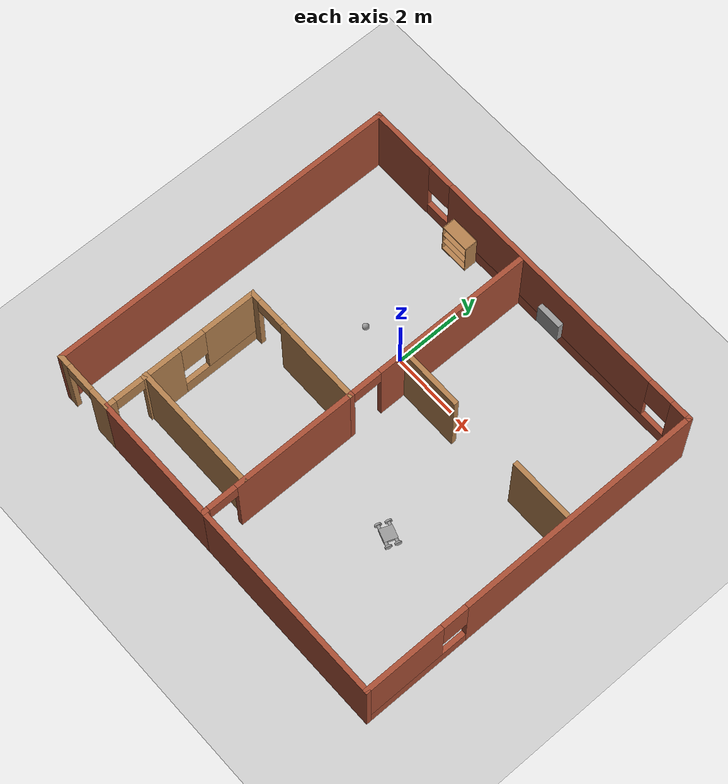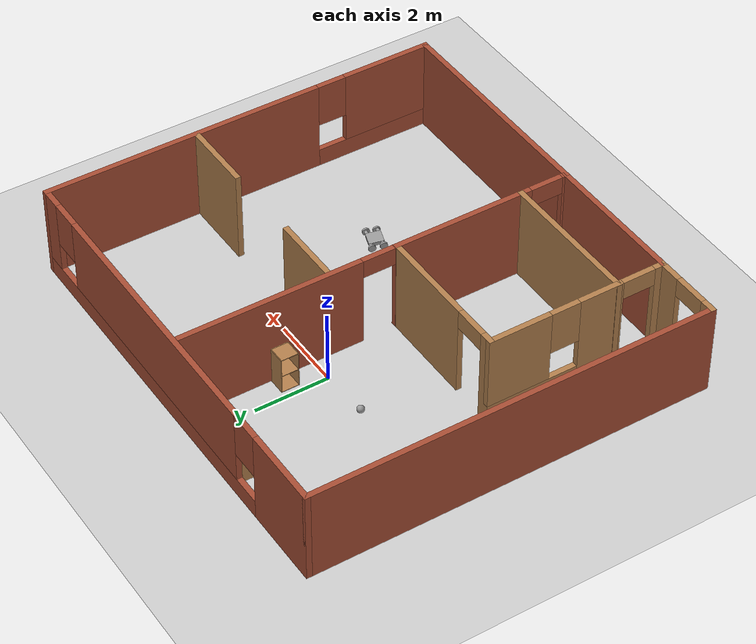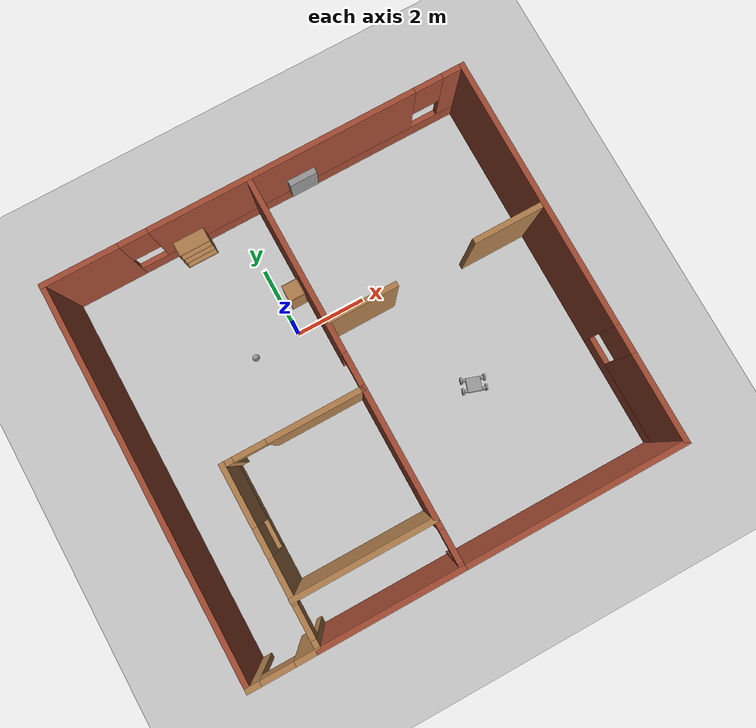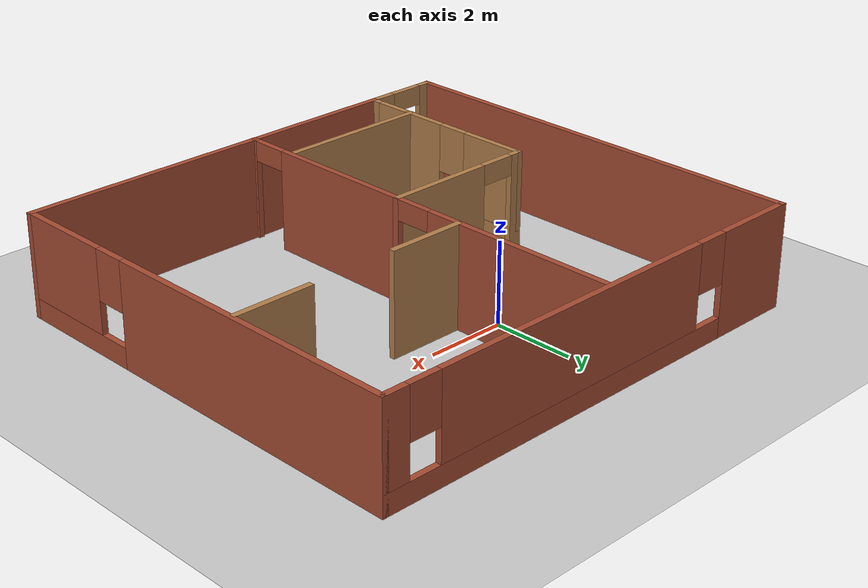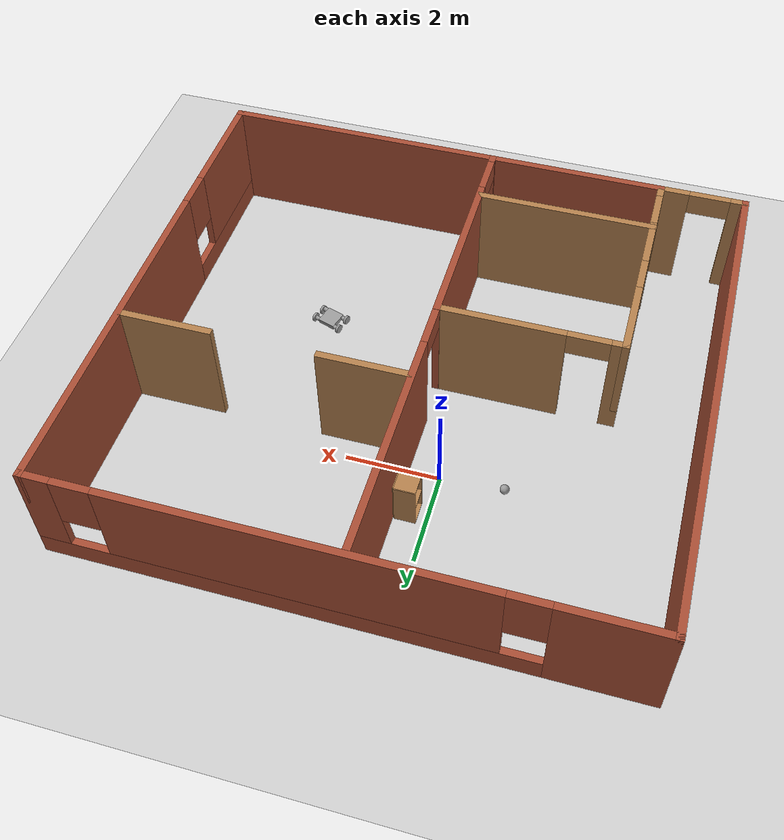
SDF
<sdf version="1.6">
 <world name="default">
  <plugin name="hello" filename="libmyPlugin.so"/>
  <light name="sun" type="directional">
   <pose>0 0 10 0 -0 0</pose>
   <diffuse>0.8 0.8 0.8 1</diffuse>
   <specular>0.2 0.2 0.2 1</specular>
   <attenuation>
    <range>1000</range>
    <constant>0.9</constant>
    <linear>0.01</linear>
    <quadratic>0.001</quadratic>
   </attenuation>
   <direction>-0.5 0.1 -0.9</direction>
  </light>
  <model name="ground_plane">
   <static>1</static>
   <link name="link">
    <collision name="collision">
     <geometry><plane><normal>0 0 1</normal><size>100 100</size></plane></geometry>
     <surface><friction><ode><mu>100</mu><mu2>50</mu2></ode></friction></surface>
    </collision>
    <visual name="visual">
     <cast_shadows>0</cast_shadows>
     <geometry><plane><normal>0 0 1</normal><size>100 100</size></plane></geometry>
     <material>
      <script><uri>file://media/materials/scripts/gazebo.material</uri><name>Gazebo/Grey</name></script>
     </material>
    </visual>
   </link>
  </model>
  <gravity>0 0 -9.8</gravity>
  <magnetic_field>6e-06 2.3e-05 -4.2e-05</magnetic_field>
  <atmosphere type="adiabatic"/>
  <physics name="default_physics" default="0" type="ode">
   <max_step_size>0.001</max_step_size>
   <real_time_factor>1</real_time_factor>
   <real_time_update_rate>1000</real_time_update_rate>
  </physics>
  <scene><ambient>0.4 0.4 0.4 1</ambient><background>0.7 0.7 0.7 1</background><shadows>1</shadows></scene>
  <spherical_coordinates>
   <surface_model>EARTH_WGS84</surface_model>
   <latitude_deg>0</latitude_deg>
   <longitude_deg>0</longitude_deg>
   <elevation>0</elevation>
   <heading_deg>0</heading_deg>
  </spherical_coordinates>
  <model name="Building">
   <pose>0.95778 -1.80787 0 0 -0 0</pose>
   <link name="Wall_13">
    <pose>-5 -5.425 0 0 -0 0</pose>
    <visual name="Wall_13_Visual_0">
     <pose>-0.801873 0 1.25 0 -0 0</pose>
     <geometry><box><size>0.396253 0.15 2.5</size></box></geometry>
     <material>
      <script><uri>file://media/materials/scripts/gazebo.material</uri><name>Gazebo/Wood</name></script>
      <ambient>0 0.333333 0 1</ambient>
     </material>
     <meta><layer>0</layer></meta>
    </visual>
    <collision name="Wall_13_Collision_0">
     <geometry><box><size>0.396253 0.15 2.5</size></box></geometry>
     <pose>-0.801873 0 1.25 0 -0 0</pose>
    </collision>
    <visual name="Wall_13_Visual_1">
     <pose>0.648127 0 1.25 0 -0 0</pose>
     <geometry><box><size>0.703747 0.15 2.5</size></box></geometry>
     <material>
      <script><uri>file://media/materials/scripts/gazebo.material</uri><name>Gazebo/Wood</name></script>
      <ambient>0 0.333333 0 1</ambient>
     </material>
     <meta><layer>0</layer></meta>
    </visual>
    <collision name="Wall_13_Collision_1">
     <geometry><box><size>0.703747 0.15 2.5</size></box></geometry>
     <pose>0.648127 0 1.25 0 -0 0</pose>
    </collision>
    <visual name="Wall_13_Visual_2">
     <pose>-0.153747 0 2.25 0 -0 0</pose>
     <geometry><box><size>0.9 0.15 0.5</size></box></geometry>
     <material>
      <script><uri>file://media/materials/scripts/gazebo.material</uri><name>Gazebo/Wood</name></script>
      <ambient>0 0.333333 0 1</ambient>
     </material>
     <meta><layer>0</layer></meta>
    </visual>
    <collision name="Wall_13_Collision_2">
     <geometry><box><size>0.9 0.15 0.5</size></box></geometry>
     <pose>-0.153747 0 2.25 0 -0 0</pose>
    </collision>
   </link>
   <link name="Wall_14">
    <pose>-4.075 -3 0 0 -0 1.5708</pose>
    <visual name="Wall_14_Visual_0">
     <pose>-2.32953 0 1.25 0 -0 0</pose>
     <geometry><box><size>0.340933 0.15 2.5</size></box></geometry>
     <material>
      <script><uri>file://media/materials/scripts/gazebo.material</uri><name>Gazebo/Wood</name></script>
      <ambient>0 0.333333 0 1</ambient>
     </material>
     <meta><layer>0</layer></meta>
    </visual>
    <collision name="Wall_14_Collision_0">
     <geometry><box><size>0.340933 0.15 2.5</size></box></geometry>
     <pose>-2.32953 0 1.25 0 -0 0</pose>
    </collision>
    <visual name="Wall_14_Visual_1">
     <pose>-0.648218 0 1.25 0 -0 0</pose>
     <geometry><box><size>1.2217 0.15 2.5</size></box></geometry>
     <material>
      <script><uri>file://media/materials/scripts/gazebo.material</uri><name>Gazebo/Wood</name></script>
      <ambient>0 0.333333 0 1</ambient>
     </material>
     <meta><layer>0</layer></meta>
    </visual>
    <collision name="Wall_14_Collision_1">
     <geometry><box><size>1.2217 0.15 2.5</size></box></geometry>
     <pose>-0.648218 0 1.25 0 -0 0</pose>
    </collision>
    <visual name="Wall_14_Visual_2">
     <pose>1.23131 0 0.25 0 -0 0</pose>
     <geometry><box><size>2.53737 0.15 0.5</size></box></geometry>
     <material>
      <script><uri>file://media/materials/scripts/gazebo.material</uri><name>Gazebo/Wood</name></script>
      <ambient>0 0.333333 0 1</ambient>
     </material>
     <meta><layer>0</layer></meta>
    </visual>
    <collision name="Wall_14_Collision_2">
     <geometry><box><size>2.53737 0.15 0.5</size></box></geometry>
     <pose>1.23131 0 0.25 0 -0 0</pose>
    </collision>
    <visual name="Wall_14_Visual_3">
     <pose>1.63132 0 1.5 0 -0 0</pose>
     <geometry><box><size>1.73737 0.15 2</size></box></geometry>
     <material>
      <script><uri>file://media/materials/scripts/gazebo.material</uri><name>Gazebo/Wood</name></script>
      <ambient>0 0.333333 0 1</ambient>
     </material>
     <meta><layer>0</layer></meta>
    </visual>
    <collision name="Wall_14_Collision_3">
     <geometry><box><size>1.73737 0.15 2</size></box></geometry>
     <pose>1.63132 0 1.5 0 -0 0</pose>
    </collision>
    <visual name="Wall_14_Visual_4">
     <pose>0.362631 0 1.9 0 -0 0</pose>
     <geometry><box><size>0.8 0.15 1.2</size></box></geometry>
     <material>
      <script><uri>file://media/materials/scripts/gazebo.material</uri><name>Gazebo/Wood</name></script>
      <ambient>0 0.333333 0 1</ambient>
     </material>
     <meta><layer>0</layer></meta>
    </visual>
    <collision name="Wall_14_Collision_4">
     <geometry><box><size>0.8 0.15 1.2</size></box></geometry>
     <pose>0.362631 0 1.9 0 -0 0</pose>
    </collision>
    <visual name="Wall_14_Visual_5">
     <pose>-1.70907 0 2.25 0 -0 0</pose>
     <geometry><box><size>0.9 0.15 0.5</size></box></geometry>
     <material>
      <script><uri>file://media/materials/scripts/gazebo.material</uri><name>Gazebo/Wood</name></script>
      <ambient>0 0.333333 0 1</ambient>
     </material>
     <meta><layer>0</layer></meta>
    </visual>
    <collision name="Wall_14_Collision_5">
     <geometry><box><size>0.9 0.15 0.5</size></box></geometry>
     <pose>-1.70907 0 2.25 0 -0 0</pose>
    </collision>
   </link>
   <link name="Wall_15">
    <pose>-2.15 -0.575 0 0 -0 0</pose>
    <visual name="Wall_15_Visual_0">
     <pose>-1.82178 0 1.25 0 -0 0</pose>
     <geometry><box><size>0.356442 0.15 2.5</size></box></geometry>
     <material>
      <script><uri>file://media/materials/scripts/gazebo.material</uri><name>Gazebo/Wood</name></script>
      <ambient>1 1 1 1</ambient>
     </material>
     <meta><layer>0</layer></meta>
    </visual>
    <collision name="Wall_15_Collision_0">
     <geometry><box><size>0.356442 0.15 2.5</size></box></geometry>
     <pose>-1.82178 0 1.25 0 -0 0</pose>
    </collision>
    <visual name="Wall_15_Visual_1">
     <pose>0.628221 0 1.25 0 -0 0</pose>
     <geometry><box><size>2.74356 0.15 2.5</size></box></geometry>
     <material>
      <script><uri>file://media/materials/scripts/gazebo.material</uri><name>Gazebo/Wood</name></script>
      <ambient>1 1 1 1</ambient>
     </material>
     <meta><layer>0</layer></meta>
    </visual>
    <collision name="Wall_15_Collision_1">
     <geometry><box><size>2.74356 0.15 2.5</size></box></geometry>
     <pose>0.628221 0 1.25 0 -0 0</pose>
    </collision>
    <visual name="Wall_15_Visual_2">
     <pose>-1.19356 0 2.25 0 -0 0</pose>
     <geometry><box><size>0.9 0.15 0.5</size></box></geometry>
     <material>
      <script><uri>file://media/materials/scripts/gazebo.material</uri><name>Gazebo/Wood</name></script>
      <ambient>1 1 1 1</ambient>
     </material>
     <meta><layer>0</layer></meta>
    </visual>
    <collision name="Wall_15_Collision_2">
     <geometry><box><size>0.9 0.15 0.5</size></box></geometry>
     <pose>-1.19356 0 2.25 0 -0 0</pose>
    </collision>
   </link>
   <link name="Wall_16">
    <pose>-0.225 -3 0 0 0 -1.5708</pose>
    <visual name="Wall_16_Visual_0">
     <pose>-0.557233 0 1.25 0 -0 0</pose>
     <geometry><box><size>3.88553 0.15 2.5</size></box></geometry>
     <material>
      <script><uri>file://media/materials/scripts/gazebo.material</uri><name>Gazebo/Bricks</name></script>
      <ambient>1 0 0.498039 1</ambient>
     </material>
     <meta><layer>0</layer></meta>
    </visual>
    <collision name="Wall_16_Collision_0">
     <geometry><box><size>3.88553 0.15 2.5</size></box></geometry>
     <pose>-0.557233 0 1.25 0 -0 0</pose>
    </collision>
    <visual name="Wall_16_Visual_1">
     <pose>2.39277 0 1.25 0 -0 0</pose>
     <geometry><box><size>0.214466 0.15 2.5</size></box></geometry>
     <material>
      <script><uri>file://media/materials/scripts/gazebo.material</uri><name>Gazebo/Bricks</name></script>
      <ambient>1 0 0.498039 1</ambient>
     </material>
     <meta><layer>0</layer></meta>
    </visual>
    <collision name="Wall_16_Collision_1">
     <geometry><box><size>0.214466 0.15 2.5</size></box></geometry>
     <pose>2.39277 0 1.25 0 -0 0</pose>
    </collision>
    <visual name="Wall_16_Visual_2">
     <pose>1.83553 0 2.25 0 -0 0</pose>
     <geometry><box><size>0.9 0.15 0.5</size></box></geometry>
     <material>
      <script><uri>file://media/materials/scripts/gazebo.material</uri><name>Gazebo/Bricks</name></script>
      <ambient>1 0 0.498039 1</ambient>
     </material>
     <meta><layer>0</layer></meta>
    </visual>
    <collision name="Wall_16_Collision_2">
     <geometry><box><size>0.9 0.15 0.5</size></box></geometry>
     <pose>1.83553 0 2.25 0 -0 0</pose>
    </collision>
   </link>
   <link name="Wall_17">
    <collision name="Wall_17_Collision">
     <geometry><box><size>4 0.15 2.5</size></box></geometry>
     <pose>0 0 1.25 0 -0 0</pose>
    </collision>
    <visual name="Wall_17_Visual">
     <pose>0 0 1.25 0 -0 0</pose>
     <geometry><box><size>4 0.15 2.5</size></box></geometry>
     <material>
      <script><uri>file://media/materials/scripts/gazebo.material</uri><name>Gazebo/Bricks</name></script>
      <ambient>0.333333 0.666667 1 1</ambient>
     </material>
     <meta><layer>0</layer></meta>
    </visual>
    <pose>-2.15 -5.425 0 0 -0 3.14159</pose>
   </link>
   <link name="Wall_19">
    <pose>5.925 0 0 0 0 -1.5708</pose>
    <visual name="Wall_19_Visual_0">
     <pose>-1.66274 0 1.25 0 -0 0</pose>
     <geometry><box><size>7.67452 0.15 2.5</size></box></geometry>
     <material>
      <script><uri>file://media/materials/scripts/gazebo.material</uri><name>Gazebo/Bricks</name></script>
      <ambient>0.333333 0.666667 1 1</ambient>
     </material>
     <meta><layer>0</layer></meta>
    </visual>
    <collision name="Wall_19_Collision_0">
     <geometry><box><size>7.67452 0.15 2.5</size></box></geometry>
     <pose>-1.66274 0 1.25 0 -0 0</pose>
    </collision>
    <visual name="Wall_19_Visual_1">
     <pose>3.83726 0 0.25 0 -0 0</pose>
     <geometry><box><size>3.32548 0.15 0.5</size></box></geometry>
     <material>
      <script><uri>file://media/materials/scripts/gazebo.material</uri><name>Gazebo/Bricks</name></script>
      <ambient>0.333333 0.666667 1 1</ambient>
     </material>
     <meta><layer>0</layer></meta>
    </visual>
    <collision name="Wall_19_Collision_1">
     <geometry><box><size>3.32548 0.15 0.5</size></box></geometry>
     <pose>3.83726 0 0.25 0 -0 0</pose>
    </collision>
    <visual name="Wall_19_Visual_2">
     <pose>4.23726 0 1.5 0 -0 0</pose>
     <geometry><box><size>2.52548 0.15 2</size></box></geometry>
     <material>
      <script><uri>file://media/materials/scripts/gazebo.material</uri><name>Gazebo/Bricks</name></script>
      <ambient>0.333333 0.666667 1 1</ambient>
     </material>
     <meta><layer>0</layer></meta>
    </visual>
    <collision name="Wall_19_Collision_2">
     <geometry><box><size>2.52548 0.15 2</size></box></geometry>
     <pose>4.23726 0 1.5 0 -0 0</pose>
    </collision>
    <visual name="Wall_19_Visual_3">
     <pose>2.57452 0 1.9 0 -0 0</pose>
     <geometry><box><size>0.8 0.15 1.2</size></box></geometry>
     <material>
      <script><uri>file://media/materials/scripts/gazebo.material</uri><name>Gazebo/Bricks</name></script>
      <ambient>0.333333 0.666667 1 1</ambient>
     </material>
     <meta><layer>0</layer></meta>
    </visual>
    <collision name="Wall_19_Collision_3">
     <geometry><box><size>0.8 0.15 1.2</size></box></geometry>
     <pose>2.57452 0 1.9 0 -0 0</pose>
    </collision>
   </link>
   <link name="Wall_20">
    <collision name="Wall_20_Collision">
     <geometry><box><size>6.3 0.15 2.5</size></box></geometry>
     <pose>0 0 1.25 0 -0 0</pose>
    </collision>
    <visual name="Wall_20_Visual">
     <pose>0 0 1.25 0 -0 0</pose>
     <geometry><box><size>6.3 0.15 2.5</size></box></geometry>
     <material>
      <script><uri>file://media/materials/scripts/gazebo.material</uri><name>Gazebo/Bricks</name></script>
      <ambient>0.333333 0.666667 1 1</ambient>
     </material>
     <meta><layer>0</layer></meta>
    </visual>
    <pose>2.85 -5.425 0 0 -0 3.14159</pose>
   </link>
   <link name="Wall_22">
    <pose>-0.225 2.35 0 0 -0 1.5708</pose>
    <visual name="Wall_22_Visual_0">
     <pose>-2.92136 0 1.25 0 -0 0</pose>
     <geometry><box><size>0.157281 0.15 2.5</size></box></geometry>
     <material>
      <script><uri>file://media/materials/scripts/gazebo.material</uri><name>Gazebo/Bricks</name></script>
      <ambient>1 0 0.498039 1</ambient>
     </material>
     <meta><layer>0</layer></meta>
    </visual>
    <collision name="Wall_22_Collision_0">
     <geometry><box><size>0.157281 0.15 2.5</size></box></geometry>
     <pose>-2.92136 0 1.25 0 -0 0</pose>
    </collision>
    <visual name="Wall_22_Visual_1">
     <pose>0.528641 0 1.25 0 -0 0</pose>
     <geometry><box><size>4.94272 0.15 2.5</size></box></geometry>
     <material>
      <script><uri>file://media/materials/scripts/gazebo.material</uri><name>Gazebo/Bricks</name></script>
      <ambient>1 0 0.498039 1</ambient>
     </material>
     <meta><layer>0</layer></meta>
    </visual>
    <collision name="Wall_22_Collision_1">
     <geometry><box><size>4.94272 0.15 2.5</size></box></geometry>
     <pose>0.528641 0 1.25 0 -0 0</pose>
    </collision>
    <visual name="Wall_22_Visual_2">
     <pose>-2.39272 0 2.25 0 -0 0</pose>
     <geometry><box><size>0.9 0.15 0.5</size></box></geometry>
     <material>
      <script><uri>file://media/materials/scripts/gazebo.material</uri><name>Gazebo/Bricks</name></script>
      <ambient>1 0 0.498039 1</ambient>
     </material>
     <meta><layer>0</layer></meta>
    </visual>
    <collision name="Wall_22_Collision_2">
     <geometry><box><size>0.9 0.15 0.5</size></box></geometry>
     <pose>-2.39272 0 2.25 0 -0 0</pose>
    </collision>
   </link>
   <link name="Wall_3">
    <pose>0 5.425 0 0 -0 0</pose>
    <visual name="Wall_3_Visual_0">
     <pose>-4.91889 0 1.25 0 -0 0</pose>
     <geometry><box><size>2.16222 0.15 2.5</size></box></geometry>
     <material>
      <script><uri>file://media/materials/scripts/gazebo.material</uri><name>Gazebo/Bricks</name></script>
      <ambient>0.333333 0.666667 1 1</ambient>
     </material>
     <meta><layer>0</layer></meta>
    </visual>
    <collision name="Wall_3_Collision_0">
     <geometry><box><size>2.16222 0.15 2.5</size></box></geometry>
     <pose>-4.91889 0 1.25 0 -0 0</pose>
    </collision>
    <visual name="Wall_3_Visual_1">
     <pose>1.08111 0 0.25 0 -0 0</pose>
     <geometry><box><size>9.83778 0.15 0.5</size></box></geometry>
     <material>
      <script><uri>file://media/materials/scripts/gazebo.material</uri><name>Gazebo/Bricks</name></script>
      <ambient>0.333333 0.666667 1 1</ambient>
     </material>
     <meta><layer>0</layer></meta>
    </visual>
    <collision name="Wall_3_Collision_1">
     <geometry><box><size>9.83778 0.15 0.5</size></box></geometry>
     <pose>1.08111 0 0.25 0 -0 0</pose>
    </collision>
    <visual name="Wall_3_Visual_2">
     <pose>0.745897 0 1.5 0 -0 0</pose>
     <geometry><box><size>7.56736 0.15 2</size></box></geometry>
     <material>
      <script><uri>file://media/materials/scripts/gazebo.material</uri><name>Gazebo/Bricks</name></script>
      <ambient>0.333333 0.666667 1 1</ambient>
     </material>
     <meta><layer>0</layer></meta>
    </visual>
    <collision name="Wall_3_Collision_2">
     <geometry><box><size>7.56736 0.15 2</size></box></geometry>
     <pose>0.745897 0 1.5 0 -0 0</pose>
    </collision>
    <visual name="Wall_3_Visual_3">
     <pose>5.66479 0 1.5 0 -0 0</pose>
     <geometry><box><size>0.670423 0.15 2</size></box></geometry>
     <material>
      <script><uri>file://media/materials/scripts/gazebo.material</uri><name>Gazebo/Bricks</name></script>
      <ambient>0.333333 0.666667 1 1</ambient>
     </material>
     <meta><layer>0</layer></meta>
    </visual>
    <collision name="Wall_3_Collision_3">
     <geometry><box><size>0.670423 0.15 2</size></box></geometry>
     <pose>5.66479 0 1.5 0 -0 0</pose>
    </collision>
    <visual name="Wall_3_Visual_4">
     <pose>-3.43778 0 1.9 0 -0 0</pose>
     <geometry><box><size>0.8 0.15 1.2</size></box></geometry>
     <material>
      <script><uri>file://media/materials/scripts/gazebo.material</uri><name>Gazebo/Bricks</name></script>
      <ambient>0.333333 0.666667 1 1</ambient>
     </material>
     <meta><layer>0</layer></meta>
    </visual>
    <collision name="Wall_3_Collision_4">
     <geometry><box><size>0.8 0.15 1.2</size></box></geometry>
     <pose>-3.43778 0 1.9 0 -0 0</pose>
    </collision>
    <visual name="Wall_3_Visual_5">
     <pose>4.92958 0 1.9 0 -0 0</pose>
     <geometry><box><size>0.8 0.15 1.2</size></box></geometry>
     <material>
      <script><uri>file://media/materials/scripts/gazebo.material</uri><name>Gazebo/Bricks</name></script>
      <ambient>0.333333 0.666667 1 1</ambient>
     </material>
     <meta><layer>0</layer></meta>
    </visual>
    <collision name="Wall_3_Collision_5">
     <geometry><box><size>0.8 0.15 1.2</size></box></geometry>
     <pose>4.92958 0 1.9 0 -0 0</pose>
    </collision>
   </link>
   <link name="Wall_33">
    <collision name="Wall_33_Collision">
     <geometry><box><size>4 0.15 2.5</size></box></geometry>
     <pose>0 0 1.25 0 -0 0</pose>
    </collision>
    <visual name="Wall_33_Visual">
     <pose>0 0 1.25 0 -0 0</pose>
     <geometry><box><size>4 0.15 2.5</size></box></geometry>
     <material>
      <script><uri>file://media/materials/scripts/gazebo.material</uri><name>Gazebo/Wood</name></script>
      <ambient>0 0.333333 0 1</ambient>
     </material>
     <meta><layer>0</layer></meta>
    </visual>
    <pose>-2.16276 -4.12577 0 0 -0 0</pose>
   </link>
   <link name="Wall_35">
    <collision name="Wall_35_Collision">
     <geometry><box><size>2 0.15 2.5</size></box></geometry>
     <pose>0 0 1.25 0 -0 0</pose>
    </collision>
    <visual name="Wall_35_Visual">
     <pose>0 0 1.25 0 -0 0</pose>
     <geometry><box><size>2 0.15 2.5</size></box></geometry>
     <material>
      <script><uri>file://media/materials/scripts/gazebo.material</uri><name>Gazebo/Wood</name></script>
      <ambient>1 1 1 1</ambient>
     </material>
     <meta><layer>0</layer></meta>
    </visual>
    <pose>0.739273 1.28478 0 0 -0 0</pose>
   </link>
   <link name="Wall_37">
    <collision name="Wall_37_Collision">
     <geometry><box><size>2 0.15 2.5</size></box></geometry>
     <pose>0 0 1.25 0 -0 0</pose>
    </collision>
    <visual name="Wall_37_Visual">
     <pose>0 0 1.25 0 -0 0</pose>
     <geometry><box><size>2 0.15 2.5</size></box></geometry>
     <material>
      <script><uri>file://media/materials/scripts/gazebo.material</uri><name>Gazebo/Wood</name></script>
      <ambient>1 1 1 1</ambient>
     </material>
     <meta><layer>0</layer></meta>
    </visual>
    <pose>4.90323 1.30489 0 0 -0 3.14159</pose>
   </link>
   <link name="Wall_6">
    <collision name="Wall_6_Collision">
     <geometry><box><size>11 0.15 2.5</size></box></geometry>
     <pose>0 0 1.25 0 -0 0</pose>
    </collision>
    <visual name="Wall_6_Visual">
     <pose>0 0 1.25 0 -0 0</pose>
     <geometry><box><size>11 0.15 2.5</size></box></geometry>
     <material>
      <script><uri>file://media/materials/scripts/gazebo.material</uri><name>Gazebo/Bricks</name></script>
      <ambient>0.333333 0.666667 1 1</ambient>
     </material>
     <meta><layer>0</layer></meta>
    </visual>
    <pose>-5.925 0 0 0 0 -1.5708</pose>
   </link>
   <link name="Window_3">
    <collision name="Window_3_Collision">
     <geometry><box><size>0.8 0.17 0.8</size></box></geometry>
     <pose>0 0 0.4 0 -0 0</pose>
    </collision>
    <visual name="Window_3_Visual">
     <pose>0 0 0.4 0 -0 0</pose>
     <geometry><box><size>0.8 0.17 0.8</size></box></geometry>
     <material>
      <script><uri>file://media/materials/scripts/gazebo.material</uri><name>Gazebo/Grey</name></script>
     </material>
    </visual>
    <pose>1.11085 5.245 0.5 0 -0 0</pose>
   </link>
   <static>1</static>
  </model>
  <model name="MyRobot">
   <link name="link_0">
    <pose>2e-06 -0.002778 0.002777 0 -0 0</pose>
    <inertial>
     <mass>1</mass>
     <inertia>
      <ixx>0.166667</ixx>
      <ixy>0</ixy>
      <ixz>0</ixz>
      <iyy>0.166667</iyy>
      <iyz>0</iyz>
      <izz>0.166667</izz>
     </inertia>
    </inertial>
    <visual name="visual">
     <geometry><box><size>0.4 0.4 0.1</size></box></geometry>
     <material>
      <lighting>1</lighting>
      <script><uri>file://media/materials/scripts/gazebo.material</uri><name>Gazebo/Grey</name></script>
      <ambient>0.3 0.3 0.3 1</ambient>
      <diffuse>0.7 0.7 0.7 1</diffuse>
      <specular>0.01 0.01 0.01 1</specular>
      <emissive>0 0 0 1</emissive>
      <shader type="vertex"><normal_map>__default__</normal_map></shader>
     </material>
    </visual>
    <collision name="collision">
     <geometry><box><size>0.4 0.4 0.1</size></box></geometry>
     <surface>
      <friction>
       <ode><mu>1</mu><mu2>1</mu2><fdir1>0 0 0</fdir1><slip1>0</slip1><slip2>0</slip2></ode>
       <torsional>
        <coefficient>1</coefficient>
        <patch_radius>0</patch_radius>
        <surface_radius>0</surface_radius>
        <use_patch_radius>1</use_patch_radius>
        <ode><slip>0</slip></ode>
       </torsional>
      </friction>
      <bounce><restitution_coefficient>0</restitution_coefficient><threshold>1e+06</threshold></bounce>
      <contact>
       <collide_without_contact>0</collide_without_contact>
       <collide_without_contact_bitmask>1</collide_without_contact_bitmask>
       <collide_bitmask>1</collide_bitmask>
       <ode>
        <soft_cfm>0</soft_cfm>
        <soft_erp>0.2</soft_erp>
        <kp>1e+13</kp>
        <kd>1</kd>
        <max_vel>0.01</max_vel>
        <min_depth>0</min_depth>
       </ode>
       <bullet>
        <split_impulse>1</split_impulse>
        <split_impulse_penetration_threshold>-0.01</split_impulse_penetration_threshold>
        <soft_cfm>0</soft_cfm>
        <soft_erp>0.2</soft_erp>
        <kp>1e+13</kp>
        <kd>1</kd>
       </bullet>
      </contact>
     </surface>
    </collision>
   </link>
   <link name="link_1">
    <pose>0.250012 -0.152778 0.002777 0 1.5707 5e-05</pose>
    <inertial>
     <mass>1</mass>
     <inertia><ixx>0.145833</ixx><ixy>0</ixy><ixz>0</ixz><iyy>0.145833</iyy><iyz>0</iyz><izz>0.125</izz></inertia>
    </inertial>
    <visual name="visual">
     <geometry><cylinder><radius>0.05</radius><length>0.1</length></cylinder></geometry>
     <material>
      <lighting>1</lighting>
      <script><uri>file://media/materials/scripts/gazebo.material</uri><name>Gazebo/Grey</name></script>
      <ambient>0.3 0.3 0.3 1</ambient>
      <diffuse>0.7 0.7 0.7 1</diffuse>
      <specular>0.01 0.01 0.01 1</specular>
      <emissive>0 0 0 1</emissive>
      <shader type="vertex"><normal_map>__default__</normal_map></shader>
     </material>
    </visual>
    <collision name="collision">
     <geometry><cylinder><radius>0.05</radius><length>0.1</length></cylinder></geometry>
     <surface>
      <friction>
       <ode><mu>1</mu><mu2>1</mu2><fdir1>0 0 0</fdir1><slip1>0</slip1><slip2>0</slip2></ode>
       <torsional>
        <coefficient>1</coefficient>
        <patch_radius>0</patch_radius>
        <surface_radius>0</surface_radius>
        <use_patch_radius>1</use_patch_radius>
        <ode><slip>0</slip></ode>
       </torsional>
      </friction>
      <bounce><restitution_coefficient>0</restitution_coefficient><threshold>1e+06</threshold></bounce>
      <contact>
       <collide_without_contact>0</collide_without_contact>
       <collide_without_contact_bitmask>1</collide_without_contact_bitmask>
       <collide_bitmask>1</collide_bitmask>
       <ode>
        <soft_cfm>0</soft_cfm>
        <soft_erp>0.2</soft_erp>
        <kp>1e+13</kp>
        <kd>1</kd>
        <max_vel>0.01</max_vel>
        <min_depth>0</min_depth>
       </ode>
       <bullet>
        <split_impulse>1</split_impulse>
        <split_impulse_penetration_threshold>-0.01</split_impulse_penetration_threshold>
        <soft_cfm>0</soft_cfm>
        <soft_erp>0.2</soft_erp>
        <kp>1e+13</kp>
        <kd>1</kd>
       </bullet>
      </contact>
     </surface>
    </collision>
   </link>
   <link name="link_1_clone">
    <pose>0.250009 0.147219 0.002777 0 1.5707 5e-05</pose>
    <inertial>
     <mass>1</mass>
     <inertia><ixx>0.145833</ixx><ixy>0</ixy><ixz>0</ixz><iyy>0.145833</iyy><iyz>0</iyz><izz>0.125</izz></inertia>
    </inertial>
    <visual name="visual">
     <geometry><cylinder><radius>0.05</radius><length>0.1</length></cylinder></geometry>
     <material>
      <lighting>1</lighting>
      <script><uri>file://media/materials/scripts/gazebo.material</uri><name>Gazebo/Grey</name></script>
      <ambient>0.3 0.3 0.3 1</ambient>
      <diffuse>0.7 0.7 0.7 1</diffuse>
      <specular>0.01 0.01 0.01 1</specular>
      <emissive>0 0 0 1</emissive>
      <shader type="vertex"><normal_map>__default__</normal_map></shader>
     </material>
    </visual>
    <collision name="collision">
     <geometry><cylinder><radius>0.05</radius><length>0.1</length></cylinder></geometry>
     <surface>
      <friction>
       <ode><mu>1</mu><mu2>1</mu2><fdir1>0 0 0</fdir1><slip1>0</slip1><slip2>0</slip2></ode>
       <torsional>
        <coefficient>1</coefficient>
        <patch_radius>0</patch_radius>
        <surface_radius>0</surface_radius>
        <use_patch_radius>1</use_patch_radius>
        <ode><slip>0</slip></ode>
       </torsional>
      </friction>
      <bounce><restitution_coefficient>0</restitution_coefficient><threshold>1e+06</threshold></bounce>
      <contact>
       <collide_without_contact>0</collide_without_contact>
       <collide_without_contact_bitmask>1</collide_without_contact_bitmask>
       <collide_bitmask>1</collide_bitmask>
       <ode>
        <soft_cfm>0</soft_cfm>
        <soft_erp>0.2</soft_erp>
        <kp>1e+13</kp>
        <kd>1</kd>
        <max_vel>0.01</max_vel>
        <min_depth>0</min_depth>
       </ode>
       <bullet>
        <split_impulse>1</split_impulse>
        <split_impulse_penetration_threshold>-0.01</split_impulse_penetration_threshold>
        <soft_cfm>0</soft_cfm>
        <soft_erp>0.2</soft_erp>
        <kp>1e+13</kp>
        <kd>1</kd>
       </bullet>
      </contact>
     </surface>
    </collision>
   </link>
   <link name="link_1_clone_0">
    <pose>-0.250005 0.147219 0.002777 0 1.5707 5e-05</pose>
    <inertial>
     <mass>1</mass>
     <inertia><ixx>0.145833</ixx><ixy>0</ixy><ixz>0</ixz><iyy>0.145833</iyy><iyz>0</iyz><izz>0.125</izz></inertia>
    </inertial>
    <visual name="visual">
     <geometry><cylinder><radius>0.05</radius><length>0.1</length></cylinder></geometry>
     <material>
      <lighting>1</lighting>
      <script><uri>file://media/materials/scripts/gazebo.material</uri><name>Gazebo/Grey</name></script>
      <ambient>0.3 0.3 0.3 1</ambient>
      <diffuse>0.7 0.7 0.7 1</diffuse>
      <specular>0.01 0.01 0.01 1</specular>
      <emissive>0 0 0 1</emissive>
      <shader type="vertex"><normal_map>__default__</normal_map></shader>
     </material>
    </visual>
    <collision name="collision">
     <geometry><cylinder><radius>0.05</radius><length>0.1</length></cylinder></geometry>
     <surface>
      <friction>
       <ode><mu>1</mu><mu2>1</mu2><fdir1>0 0 0</fdir1><slip1>0</slip1><slip2>0</slip2></ode>
       <torsional>
        <coefficient>1</coefficient>
        <patch_radius>0</patch_radius>
        <surface_radius>0</surface_radius>
        <use_patch_radius>1</use_patch_radius>
        <ode><slip>0</slip></ode>
       </torsional>
      </friction>
      <bounce><restitution_coefficient>0</restitution_coefficient><threshold>1e+06</threshold></bounce>
      <contact>
       <collide_without_contact>0</collide_without_contact>
       <collide_without_contact_bitmask>1</collide_without_contact_bitmask>
       <collide_bitmask>1</collide_bitmask>
       <ode>
        <soft_cfm>0</soft_cfm>
        <soft_erp>0.2</soft_erp>
        <kp>1e+13</kp>
        <kd>1</kd>
        <max_vel>0.01</max_vel>
        <min_depth>0</min_depth>
       </ode>
       <bullet>
        <split_impulse>1</split_impulse>
        <split_impulse_penetration_threshold>-0.01</split_impulse_penetration_threshold>
        <soft_cfm>0</soft_cfm>
        <soft_erp>0.2</soft_erp>
        <kp>1e+13</kp>
        <kd>1</kd>
       </bullet>
      </contact>
     </surface>
    </collision>
   </link>
   <link name="link_1_clone_1">
    <pose>-0.250005 -0.152775 0.002777 0 1.5707 5e-05</pose>
    <inertial>
     <mass>1</mass>
     <inertia><ixx>0.145833</ixx><ixy>0</ixy><ixz>0</ixz><iyy>0.145833</iyy><iyz>0</iyz><izz>0.125</izz></inertia>
    </inertial>
    <visual name="visual">
     <geometry><cylinder><radius>0.05</radius><length>0.1</length></cylinder></geometry>
     <material>
      <lighting>1</lighting>
      <script><uri>file://media/materials/scripts/gazebo.material</uri><name>Gazebo/Grey</name></script>
      <ambient>0.3 0.3 0.3 1</ambient>
      <diffuse>0.7 0.7 0.7 1</diffuse>
      <specular>0.01 0.01 0.01 1</specular>
      <emissive>0 0 0 1</emissive>
      <shader type="vertex"><normal_map>__default__</normal_map></shader>
     </material>
    </visual>
    <collision name="collision">
     <geometry><cylinder><radius>0.05</radius><length>0.1</length></cylinder></geometry>
     <surface>
      <friction>
       <ode><mu>1</mu><mu2>1</mu2><fdir1>0 0 0</fdir1><slip1>0</slip1><slip2>0</slip2></ode>
       <torsional>
        <coefficient>1</coefficient>
        <patch_radius>0</patch_radius>
        <surface_radius>0</surface_radius>
        <use_patch_radius>1</use_patch_radius>
        <ode><slip>0</slip></ode>
       </torsional>
      </friction>
      <bounce><restitution_coefficient>0</restitution_coefficient><threshold>1e+06</threshold></bounce>
      <contact>
       <collide_without_contact>0</collide_without_contact>
       <collide_without_contact_bitmask>1</collide_without_contact_bitmask>
       <collide_bitmask>1</collide_bitmask>
       <ode>
        <soft_cfm>0</soft_cfm>
        <soft_erp>0.2</soft_erp>
        <kp>1e+13</kp>
        <kd>1</kd>
        <max_vel>0.01</max_vel>
        <min_depth>0</min_depth>
       </ode>
       <bullet>
        <split_impulse>1</split_impulse>
        <split_impulse_penetration_threshold>-0.01</split_impulse_penetration_threshold>
        <soft_cfm>0</soft_cfm>
        <soft_erp>0.2</soft_erp>
        <kp>1e+13</kp>
        <kd>1</kd>
       </bullet>
      </contact>
     </surface>
    </collision>
   </link>
   <link name="link_1_clone_2">
    <pose>-0.325027 0.147219 0.002777 0 1.5707 5e-05</pose>
    <inertial>
     <mass>1</mass>
     <inertia><ixx>0.145833</ixx><ixy>0</ixy><ixz>0</ixz><iyy>0.145833</iyy><iyz>0</iyz><izz>0.125</izz></inertia>
    </inertial>
    <visual name="visual">
     <geometry><cylinder><radius>0.1</radius><length>0.05</length></cylinder></geometry>
     <material>
      <lighting>1</lighting>
      <script><uri>file://media/materials/scripts/gazebo.material</uri><name>Gazebo/Grey</name></script>
      <ambient>0.3 0.3 0.3 1</ambient>
      <diffuse>0.7 0.7 0.7 1</diffuse>
      <specular>0.01 0.01 0.01 1</specular>
      <emissive>0 0 0 1</emissive>
      <shader type="vertex"><normal_map>__default__</normal_map></shader>
     </material>
    </visual>
    <collision name="collision">
     <geometry><cylinder><radius>0.1</radius><length>0.05</length></cylinder></geometry>
     <surface>
      <friction>
       <ode><mu>1</mu><mu2>1</mu2><fdir1>0 0 0</fdir1><slip1>0</slip1><slip2>0</slip2></ode>
       <torsional>
        <coefficient>1</coefficient>
        <patch_radius>0</patch_radius>
        <surface_radius>0</surface_radius>
        <use_patch_radius>1</use_patch_radius>
        <ode><slip>0</slip></ode>
       </torsional>
      </friction>
      <bounce><restitution_coefficient>0</restitution_coefficient><threshold>1e+06</threshold></bounce>
      <contact>
       <collide_without_contact>0</collide_without_contact>
       <collide_without_contact_bitmask>1</collide_without_contact_bitmask>
       <collide_bitmask>1</collide_bitmask>
       <ode>
        <soft_cfm>0</soft_cfm>
        <soft_erp>0.2</soft_erp>
        <kp>1e+13</kp>
        <kd>1</kd>
        <max_vel>0.01</max_vel>
        <min_depth>0</min_depth>
       </ode>
       <bullet>
        <split_impulse>1</split_impulse>
        <split_impulse_penetration_threshold>-0.01</split_impulse_penetration_threshold>
        <soft_cfm>0</soft_cfm>
        <soft_erp>0.2</soft_erp>
        <kp>1e+13</kp>
        <kd>1</kd>
       </bullet>
      </contact>
     </surface>
    </collision>
   </link>
   <link name="link_1_clone_2_clone">
    <pose>-0.325027 -0.152775 0.002777 0 1.5707 5e-05</pose>
    <inertial>
     <mass>1</mass>
     <inertia><ixx>0.145833</ixx><ixy>0</ixy><ixz>0</ixz><iyy>0.145833</iyy><iyz>0</iyz><izz>0.125</izz></inertia>
    </inertial>
    <visual name="visual">
     <geometry><cylinder><radius>0.1</radius><length>0.05</length></cylinder></geometry>
     <material>
      <lighting>1</lighting>
      <script><uri>file://media/materials/scripts/gazebo.material</uri><name>Gazebo/Grey</name></script>
      <ambient>0.3 0.3 0.3 1</ambient>
      <diffuse>0.7 0.7 0.7 1</diffuse>
      <specular>0.01 0.01 0.01 1</specular>
      <emissive>0 0 0 1</emissive>
      <shader type="vertex"><normal_map>__default__</normal_map></shader>
     </material>
    </visual>
    <collision name="collision">
     <geometry><cylinder><radius>0.1</radius><length>0.05</length></cylinder></geometry>
     <surface>
      <friction>
       <ode><mu>1</mu><mu2>1</mu2><fdir1>0 0 0</fdir1><slip1>0</slip1><slip2>0</slip2></ode>
       <torsional>
        <coefficient>1</coefficient>
        <patch_radius>0</patch_radius>
        <surface_radius>0</surface_radius>
        <use_patch_radius>1</use_patch_radius>
        <ode><slip>0</slip></ode>
       </torsional>
      </friction>
      <bounce><restitution_coefficient>0</restitution_coefficient><threshold>1e+06</threshold></bounce>
      <contact>
       <collide_without_contact>0</collide_without_contact>
       <collide_without_contact_bitmask>1</collide_without_contact_bitmask>
       <collide_bitmask>1</collide_bitmask>
       <ode>
        <soft_cfm>0</soft_cfm>
        <soft_erp>0.2</soft_erp>
        <kp>1e+13</kp>
        <kd>1</kd>
        <max_vel>0.01</max_vel>
        <min_depth>0</min_depth>
       </ode>
       <bullet>
        <split_impulse>1</split_impulse>
        <split_impulse_penetration_threshold>-0.01</split_impulse_penetration_threshold>
        <soft_cfm>0</soft_cfm>
        <soft_erp>0.2</soft_erp>
        <kp>1e+13</kp>
        <kd>1</kd>
       </bullet>
      </contact>
     </surface>
    </collision>
   </link>
   <link name="link_1_clone_2_clone_0">
    <pose>0.325032 0.147222 0.002777 0 1.5707 5e-05</pose>
    <inertial>
     <mass>1</mass>
     <inertia><ixx>0.145833</ixx><ixy>0</ixy><ixz>0</ixz><iyy>0.145833</iyy><iyz>0</iyz><izz>0.125</izz></inertia>
    </inertial>
    <visual name="visual">
     <geometry><cylinder><radius>0.1</radius><length>0.05</length></cylinder></geometry>
     <material>
      <lighting>1</lighting>
      <script><uri>file://media/materials/scripts/gazebo.material</uri><name>Gazebo/Grey</name></script>
      <ambient>0.3 0.3 0.3 1</ambient>
      <diffuse>0.7 0.7 0.7 1</diffuse>
      <specular>0.01 0.01 0.01 1</specular>
      <emissive>0 0 0 1</emissive>
      <shader type="vertex"><normal_map>__default__</normal_map></shader>
     </material>
    </visual>
    <collision name="collision">
     <geometry><cylinder><radius>0.1</radius><length>0.05</length></cylinder></geometry>
     <surface>
      <friction>
       <ode><mu>1</mu><mu2>1</mu2><fdir1>0 0 0</fdir1><slip1>0</slip1><slip2>0</slip2></ode>
       <torsional>
        <coefficient>1</coefficient>
        <patch_radius>0</patch_radius>
        <surface_radius>0</surface_radius>
        <use_patch_radius>1</use_patch_radius>
        <ode><slip>0</slip></ode>
       </torsional>
      </friction>
      <bounce><restitution_coefficient>0</restitution_coefficient><threshold>1e+06</threshold></bounce>
      <contact>
       <collide_without_contact>0</collide_without_contact>
       <collide_without_contact_bitmask>1</collide_without_contact_bitmask>
       <collide_bitmask>1</collide_bitmask>
       <ode>
        <soft_cfm>0</soft_cfm>
        <soft_erp>0.2</soft_erp>
        <kp>1e+13</kp>
        <kd>1</kd>
        <max_vel>0.01</max_vel>
        <min_depth>0</min_depth>
       </ode>
       <bullet>
        <split_impulse>1</split_impulse>
        <split_impulse_penetration_threshold>-0.01</split_impulse_penetration_threshold>
        <soft_cfm>0</soft_cfm>
        <soft_erp>0.2</soft_erp>
        <kp>1e+13</kp>
        <kd>1</kd>
       </bullet>
      </contact>
     </surface>
    </collision>
   </link>
   <link name="link_2">
    <pose>0.325012 -0.127778 -0.022233 5e-05 1.5707 5e-05</pose>
    <inertial>
     <mass>1</mass>
     <inertia><ixx>0.145833</ixx><ixy>0</ixy><ixz>0</ixz><iyy>0.145833</iyy><iyz>0</iyz><izz>0.125</izz></inertia>
    </inertial>
    <visual name="visual">
     <geometry><cylinder><radius>0.1</radius><length>0.05</length></cylinder></geometry>
     <material>
      <lighting>1</lighting>
      <script><uri>file://media/materials/scripts/gazebo.material</uri><name>Gazebo/Grey</name></script>
      <ambient>0.3 0.3 0.3 1</ambient>
      <diffuse>0.7 0.7 0.7 1</diffuse>
      <specular>0.01 0.01 0.01 1</specular>
      <emissive>0 0 0 1</emissive>
      <shader type="vertex"><normal_map>__default__</normal_map></shader>
     </material>
    </visual>
    <collision name="collision">
     <geometry><cylinder><radius>0.1</radius><length>0.05</length></cylinder></geometry>
     <surface>
      <friction>
       <ode><mu>1</mu><mu2>1</mu2><fdir1>0 0 0</fdir1><slip1>0</slip1><slip2>0</slip2></ode>
       <torsional>
        <coefficient>1</coefficient>
        <patch_radius>0</patch_radius>
        <surface_radius>0</surface_radius>
        <use_patch_radius>1</use_patch_radius>
        <ode><slip>0</slip></ode>
       </torsional>
      </friction>
      <bounce><restitution_coefficient>0</restitution_coefficient><threshold>1e+06</threshold></bounce>
      <contact>
       <collide_without_contact>0</collide_without_contact>
       <collide_without_contact_bitmask>1</collide_without_contact_bitmask>
       <collide_bitmask>1</collide_bitmask>
       <ode>
        <soft_cfm>0</soft_cfm>
        <soft_erp>0.2</soft_erp>
        <kp>1e+13</kp>
        <kd>1</kd>
        <max_vel>0.01</max_vel>
        <min_depth>0</min_depth>
       </ode>
       <bullet>
        <split_impulse>1</split_impulse>
        <split_impulse_penetration_threshold>-0.01</split_impulse_penetration_threshold>
        <soft_cfm>0</soft_cfm>
        <soft_erp>0.2</soft_erp>
        <kp>1e+13</kp>
        <kd>1</kd>
       </bullet>
      </contact>
     </surface>
    </collision>
   </link>
   <joint name="link_0_JOINT_1" type="fixed">
    <parent>link_0</parent>
    <child>link_1</child>
    <physics>
     <ode><limit><cfm>0</cfm><erp>0.2</erp></limit><suspension><cfm>0</cfm><erp>0.2</erp></suspension></ode>
    </physics>
   </joint>
   <joint name="link_0_JOINT_2" type="fixed">
    <parent>link_0</parent>
    <child>link_1_clone</child>
    <physics>
     <ode><limit><cfm>0</cfm><erp>0.2</erp></limit><suspension><cfm>0</cfm><erp>0.2</erp></suspension></ode>
    </physics>
   </joint>
   <joint name="link_0_JOINT_3" type="fixed">
    <parent>link_0</parent>
    <child>link_1_clone_0</child>
    <physics>
     <ode><limit><cfm>0</cfm><erp>0.2</erp></limit><suspension><cfm>0</cfm><erp>0.2</erp></suspension></ode>
    </physics>
   </joint>
   <joint name="link_0_JOINT_4" type="fixed">
    <parent>link_0</parent>
    <child>link_1_clone_1</child>
    <physics>
     <ode><limit><cfm>0</cfm><erp>0.2</erp></limit><suspension><cfm>0</cfm><erp>0.2</erp></suspension></ode>
    </physics>
   </joint>
   <joint name="link_1_JOINT_16" type="revolute">
    <parent>link_1</parent>
    <child>link_2</child>
    <axis>
     <xyz>0 0 1</xyz>
     <use_parent_model_frame>0</use_parent_model_frame>
     <limit>
      <lower>-1.79769e+308</lower>
      <upper>1.79769e+308</upper>
      <effort>-1</effort>
      <velocity>-1</velocity>
     </limit>
     <dynamics>
      <spring_reference>0</spring_reference>
      <spring_stiffness>0</spring_stiffness>
      <damping>0</damping>
     </dynamics>
    </axis>
    <physics>
     <ode><limit><cfm>0</cfm><erp>0.2</erp></limit><suspension><cfm>0</cfm><erp>0.2</erp></suspension></ode>
    </physics>
   </joint>
   <joint name="link_1_clone_0_JOINT_5" type="revolute">
    <parent>link_1_clone_0</parent>
    <child>link_1_clone_2</child>
    <axis>
     <xyz>0 0 1</xyz>
     <use_parent_model_frame>0</use_parent_model_frame>
     <limit>
      <lower>-1.79769e+308</lower>
      <upper>1.79769e+308</upper>
      <effort>-1</effort>
      <velocity>-1</velocity>
     </limit>
     <dynamics>
      <spring_reference>0</spring_reference>
      <spring_stiffness>0</spring_stiffness>
      <damping>0</damping>
     </dynamics>
    </axis>
    <physics>
     <ode><limit><cfm>0</cfm><erp>0.2</erp></limit><suspension><cfm>0</cfm><erp>0.2</erp></suspension></ode>
    </physics>
   </joint>
   <joint name="link_1_clone_1_JOINT_6" type="revolute">
    <parent>link_1_clone_1</parent>
    <child>link_1_clone_2_clone</child>
    <axis>
     <xyz>0 0 1</xyz>
     <use_parent_model_frame>0</use_parent_model_frame>
     <limit>
      <lower>-1.79769e+308</lower>
      <upper>1.79769e+308</upper>
      <effort>-1</effort>
      <velocity>-1</velocity>
     </limit>
     <dynamics>
      <spring_reference>0</spring_reference>
      <spring_stiffness>0</spring_stiffness>
      <damping>0</damping>
     </dynamics>
    </axis>
    <physics>
     <ode><limit><cfm>0</cfm><erp>0.2</erp></limit><suspension><cfm>0</cfm><erp>0.2</erp></suspension></ode>
    </physics>
   </joint>
   <joint name="link_1_clone_JOINT_7" type="revolute">
    <parent>link_1_clone</parent>
    <child>link_1_clone_2_clone_0</child>
    <axis>
     <xyz>0 0 1</xyz>
     <use_parent_model_frame>0</use_parent_model_frame>
     <limit>
      <lower>-1.79769e+308</lower>
      <upper>1.79769e+308</upper>
      <effort>-1</effort>
      <velocity>-1</velocity>
     </limit>
     <dynamics>
      <spring_reference>0</spring_reference>
      <spring_stiffness>0</spring_stiffness>
      <damping>0</damping>
      <friction>0</friction>
     </dynamics>
    </axis>
    <physics>
     <ode><limit><cfm>0</cfm><erp>0.2</erp></limit><suspension><cfm>0</cfm><erp>0.2</erp></suspension></ode>
    </physics>
   </joint>
   <static>0</static>
   <pose>3.5241 -3.5534 0.110571 -0.090619 -3.3e-05 -0.324296</pose>
  </model>
  <model name="cabinet">
   <static>1</static>
   <link name="cabinet_bottom_plate">
    <inertial>
     <pose>0 0 -1 0 -0 0</pose>
     <inertia><ixx>2.05</ixx><ixy>0</ixy><ixz>0</ixz><iyy>2.05</iyy><iyz>0</iyz><izz>2.05</izz></inertia>
     <mass>25</mass>
    </inertial>
    <collision name="cabinet_bottom_plate_geom">
     <pose>0 0 0.01 0 -0 0</pose>
     <geometry><box><size>0.45 0.45 0.02</size></box></geometry>
    </collision>
    <visual name="cabinet_bottom_plate_geom_visual">
     <pose>0 0 0.01 0 -0 0</pose>
     <geometry><box><size>0.45 0.45 0.02</size></box></geometry>
     <material>
      <script><uri>file://media/materials/scripts/gazebo.material</uri><name>Gazebo/Wood</name></script>
     </material>
    </visual>
    <collision name="cabinet_bottom_plate_geom_cabinet_back_plate">
     <pose>0.235 0 0.51 0 -0 0</pose>
     <geometry><box><size>0.02 0.45 1.02</size></box></geometry>
    </collision>
    <visual name="cabinet_bottom_plate_geom_cabinet_back_plate_visual">
     <pose>0.235 0 0.51 0 -0 0</pose>
     <geometry><box><size>0.02 0.45 1.02</size></box></geometry>
     <material>
      <script><uri>file://media/materials/scripts/gazebo.material</uri><name>Gazebo/Wood</name></script>
     </material>
    </visual>
    <collision name="cabinet_bottom_plate_geom_cabinet_left_plate">
     <pose>0 0.235 0.51 0 -0 0</pose>
     <geometry><box><size>0.45 0.02 1.02</size></box></geometry>
    </collision>
    <visual name="cabinet_bottom_plate_geom_cabinet_left_plate_visual">
     <pose>0 0.235 0.51 0 -0 0</pose>
     <geometry><box><size>0.45 0.02 1.02</size></box></geometry>
     <material>
      <script><uri>file://media/materials/scripts/gazebo.material</uri><name>Gazebo/Wood</name></script>
     </material>
    </visual>
    <collision name="cabinet_bottom_plate_geom_cabinet_middle_plate">
     <pose>0 0 0.51 0 -0 0</pose>
     <geometry><box><size>0.45 0.45 0.02</size></box></geometry>
    </collision>
    <visual name="cabinet_bottom_plate_geom_cabinet_middle_plate_visual">
     <pose>0 0 0.51 0 -0 0</pose>
     <geometry><box><size>0.45 0.45 0.02</size></box></geometry>
     <material>
      <script><uri>file://media/materials/scripts/gazebo.material</uri><name>Gazebo/Wood</name></script>
     </material>
    </visual>
    <collision name="cabinet_bottom_plate_geom_cabinet_right_plate">
     <pose>0 -0.235 0.51 0 -0 0</pose>
     <geometry><box><size>0.45 0.02 1.02</size></box></geometry>
    </collision>
    <visual name="cabinet_bottom_plate_geom_cabinet_right_plate_visual">
     <pose>0 -0.235 0.51 0 -0 0</pose>
     <geometry><box><size>0.45 0.02 1.02</size></box></geometry>
     <material>
      <script><uri>file://media/materials/scripts/gazebo.material</uri><name>Gazebo/Wood</name></script>
     </material>
    </visual>
    <collision name="cabinet_bottom_plate_geom_cabinet_top_plate">
     <pose>0 0 1.01 0 -0 0</pose>
     <geometry><box><size>0.45 0.45 0.02</size></box></geometry>
    </collision>
    <visual name="cabinet_bottom_plate_geom_cabinet_top_plate_visual">
     <pose>0 0 1.01 0 -0 0</pose>
     <geometry><box><size>0.45 0.45 0.02</size></box></geometry>
     <material>
      <script><uri>file://media/materials/scripts/gazebo.material</uri><name>Gazebo/Wood</name></script>
     </material>
    </visual>
   </link>
   <pose>0.412824 0.915643 0 0 -0 0</pose>
  </model>
  <model name="bookshelf">
   <static>1</static>
   <link name="link">
    <inertial><mass>1</mass></inertial>
    <collision name="back">
     <pose>0 0.005 0.6 0 -0 0</pose>
     <geometry><box><size>0.9 0.01 1.2</size></box></geometry>
    </collision>
    <visual name="visual1">
     <pose>0 0.005 0.6 0 -0 0</pose>
     <geometry><box><size>0.9 0.01 1.2</size></box></geometry>
     <material>
      <script><uri>file://media/materials/scripts/gazebo.material</uri><name>Gazebo/Wood</name></script>
     </material>
    </visual>
    <collision name="left_side">
     <pose>0.45 -0.195 0.6 0 -0 0</pose>
     <geometry><box><size>0.02 0.4 1.2</size></box></geometry>
    </collision>
    <visual name="visual2">
     <pose>0.45 -0.195 0.6 0 -0 0</pose>
     <geometry><box><size>0.02 0.4 1.2</size></box></geometry>
     <material>
      <script><uri>file://media/materials/scripts/gazebo.material</uri><name>Gazebo/Wood</name></script>
     </material>
    </visual>
    <collision name="right_side">
     <pose>-0.45 -0.195 0.6 0 -0 0</pose>
     <geometry><box><size>0.02 0.4 1.2</size></box></geometry>
    </collision>
    <visual name="visual3">
     <pose>-0.45 -0.195 0.6 0 -0 0</pose>
     <geometry><box><size>0.02 0.4 1.2</size></box></geometry>
     <material>
      <script><uri>file://media/materials/scripts/gazebo.material</uri><name>Gazebo/Wood</name></script>
     </material>
    </visual>
    <collision name="bottom">
     <pose>0 -0.195 0.03 0 -0 0</pose>
     <geometry><box><size>0.88 0.4 0.06</size></box></geometry>
    </collision>
    <visual name="visual4">
     <pose>0 -0.195 0.03 0 -0 0</pose>
     <geometry><box><size>0.88 0.4 0.06</size></box></geometry>
     <material>
      <script><uri>file://media/materials/scripts/gazebo.material</uri><name>Gazebo/Wood</name></script>
     </material>
    </visual>
    <collision name="top">
     <pose>0 -0.195 1.19 0 -0 0</pose>
     <geometry><box><size>0.88 0.4 0.02</size></box></geometry>
    </collision>
    <visual name="visual5">
     <pose>0 -0.195 1.19 0 -0 0</pose>
     <geometry><box><size>0.88 0.4 0.02</size></box></geometry>
     <material>
      <script><uri>file://media/materials/scripts/gazebo.material</uri><name>Gazebo/Wood</name></script>
     </material>
    </visual>
    <collision name="low_shelf">
     <pose>0 -0.195 0.43 0 -0 0</pose>
     <geometry><box><size>0.88 0.4 0.02</size></box></geometry>
    </collision>
    <visual name="visual6">
     <pose>0 -0.195 0.43 0 -0 0</pose>
     <geometry><box><size>0.88 0.4 0.02</size></box></geometry>
     <material>
      <script><uri>file://media/materials/scripts/gazebo.material</uri><name>Gazebo/Wood</name></script>
     </material>
    </visual>
    <collision name="high_shelf">
     <pose>0 -0.195 0.8 0 -0 0</pose>
     <geometry><box><size>0.88 0.4 0.02</size></box></geometry>
    </collision>
    <visual name="visual7">
     <pose>0 -0.195 0.8 0 -0 0</pose>
     <geometry><box><size>0.88 0.4 0.02</size></box></geometry>
     <material>
      <script><uri>file://media/materials/scripts/gazebo.material</uri><name>Gazebo/Wood</name></script>
     </material>
    </visual>
   </link>
   <pose>-1.33708 3.50109 0 0 -0 0</pose>
  </model>
  <model name="my_ball">
   <link name="link_0">
    <inertial>
     <mass>1</mass>
     <inertia><ixx>0.1</ixx><ixy>0</ixy><ixz>0</ixz><iyy>0.1</iyy><iyz>0</iyz><izz>0.1</izz></inertia>
    </inertial>
    <visual name="visual">
     <geometry><sphere><radius>0.1</radius></sphere></geometry>
     <material>
      <lighting>1</lighting>
      <script><uri>file://media/materials/scripts/gazebo.material</uri><name>Gazebo/Grey</name></script>
      <ambient>1 1 1 1</ambient>
      <diffuse>1 1 1 1</diffuse>
      <specular>1 1 1 1</specular>
      <emissive>1 1 1 1</emissive>
      <shader type="vertex"><normal_map>__default__</normal_map></shader>
     </material>
    </visual>
    <collision name="collision">
     <geometry><sphere><radius>0.1</radius></sphere></geometry>
     <surface>
      <friction>
       <ode><mu>1</mu><mu2>1</mu2><fdir1>0 0 0</fdir1><slip1>0</slip1><slip2>0</slip2></ode>
       <torsional>
        <coefficient>1</coefficient>
        <patch_radius>0</patch_radius>
        <surface_radius>0</surface_radius>
        <use_patch_radius>1</use_patch_radius>
        <ode><slip>0</slip></ode>
       </torsional>
      </friction>
      <bounce><restitution_coefficient>0</restitution_coefficient><threshold>1e+06</threshold></bounce>
      <contact>
       <collide_without_contact>0</collide_without_contact>
       <collide_without_contact_bitmask>1</collide_without_contact_bitmask>
       <collide_bitmask>1</collide_bitmask>
       <ode>
        <soft_cfm>0</soft_cfm>
        <soft_erp>0.2</soft_erp>
        <kp>1e+13</kp>
        <kd>1</kd>
        <max_vel>0.01</max_vel>
        <min_depth>0</min_depth>
       </ode>
       <bullet>
        <split_impulse>1</split_impulse>
        <split_impulse_penetration_threshold>-0.01</split_impulse_penetration_threshold>
        <soft_cfm>0</soft_cfm>
        <soft_erp>0.2</soft_erp>
        <kp>1e+13</kp>
        <kd>1</kd>
       </bullet>
      </contact>
     </surface>
    </collision>
   </link>
   <static>0</static>
   <pose>-1.34395 -0.050189 0.1 0 -0 0</pose>
  </model>
 </world>
</sdf>
